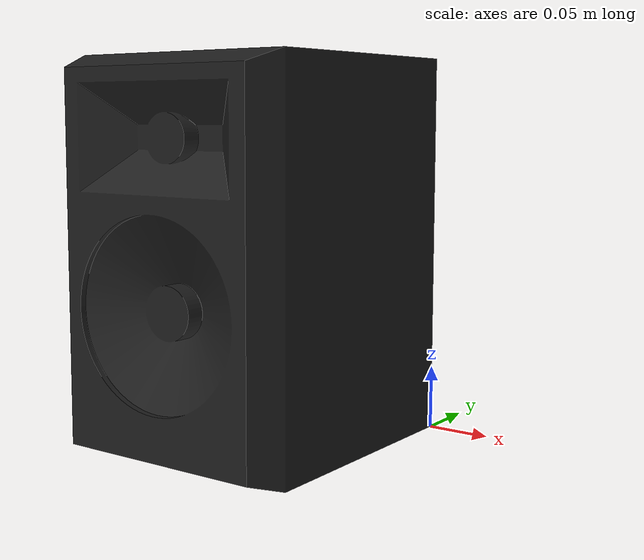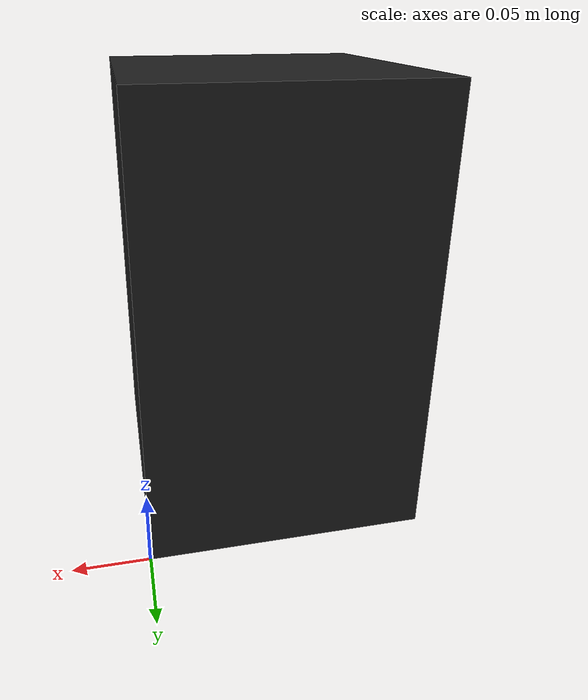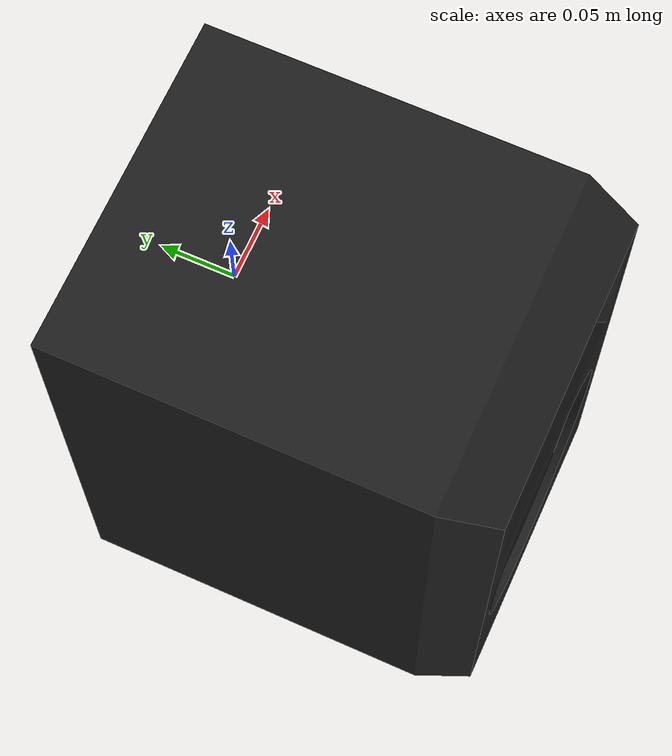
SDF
<?xml version="1.0" ?>
<sdf version="1.5">
  <model name="jbl5">
    <pose>-0.0925 -0.1155 0 0 0 0</pose>
    <link name="link">
      <visual name="visual">
        <geometry>
          <mesh>
            <uri>model://jbl5/meshes/jbl5in.stl</uri>
            <scale>0.001 0.001 0.001</scale>
          </mesh>
        </geometry>
        <material>
          <script>
            <uri>file://media/materials/scripts/gazebo.material</uri>
            <name>Gazebo/Black</name>
          </script>
          <ambient>1 1 1 1</ambient>
        </material>
      </visual>
      <collision name="collision">
        <geometry>
          <mesh>
            <uri>model://jbl5/meshes/jbl5.stl</uri>
            <scale>0.001 0.001 0.001</scale>
          </mesh>
        </geometry>
      </collision>
    </link>
    <static>1</static>
  </model>
</sdf>
